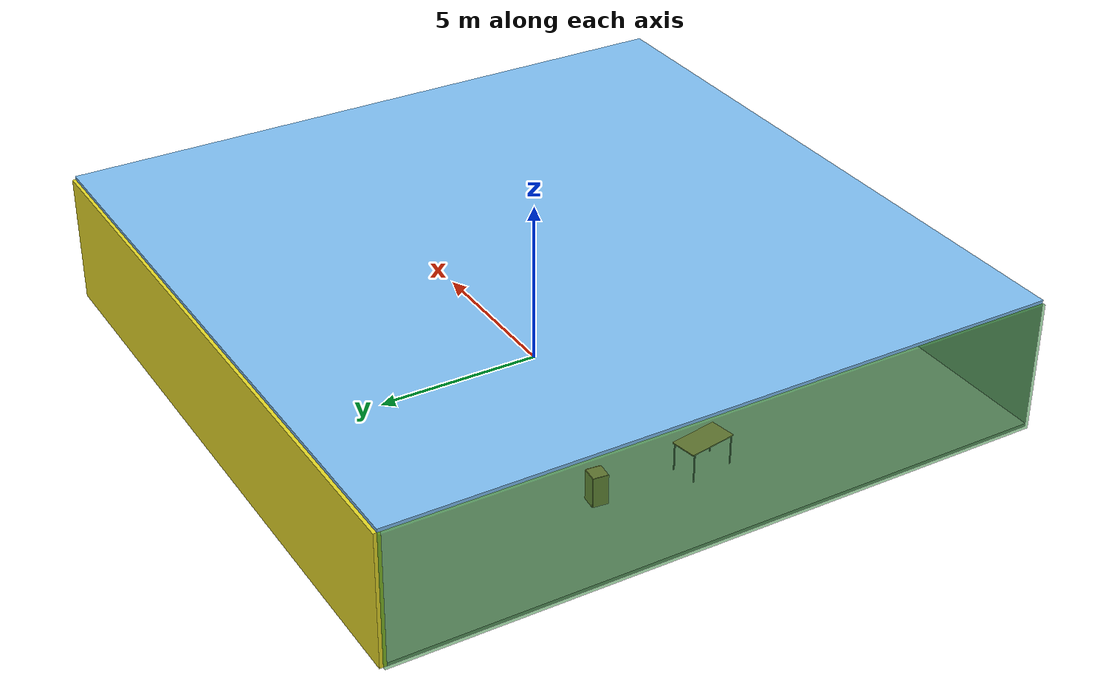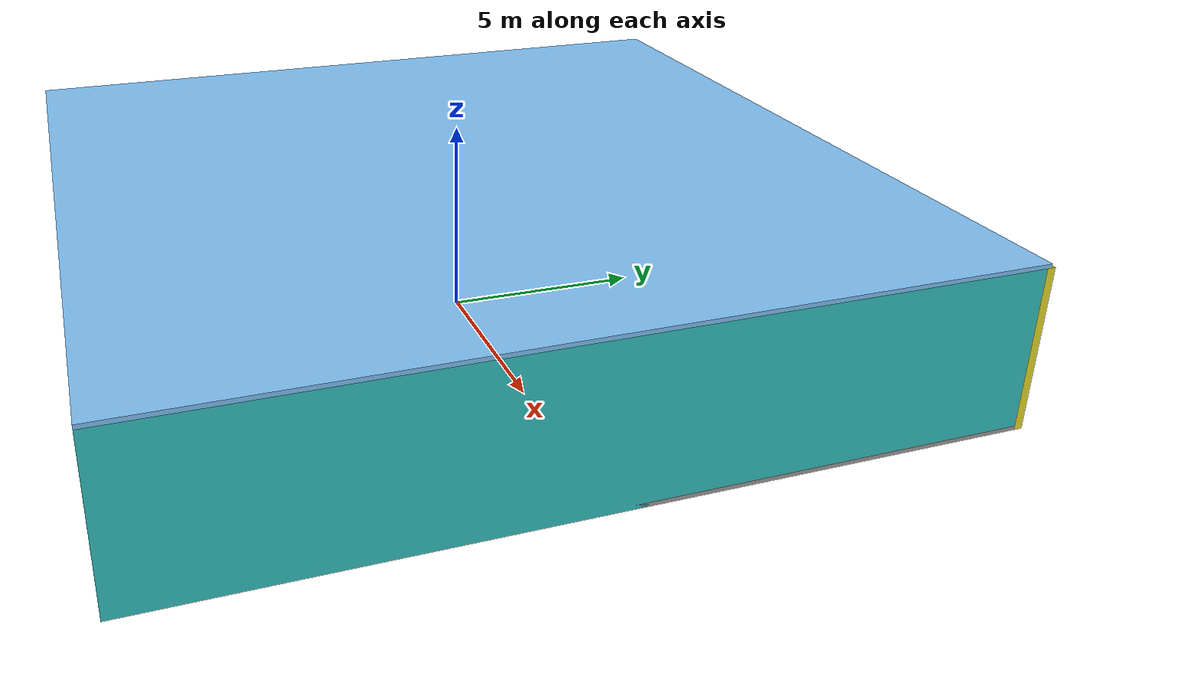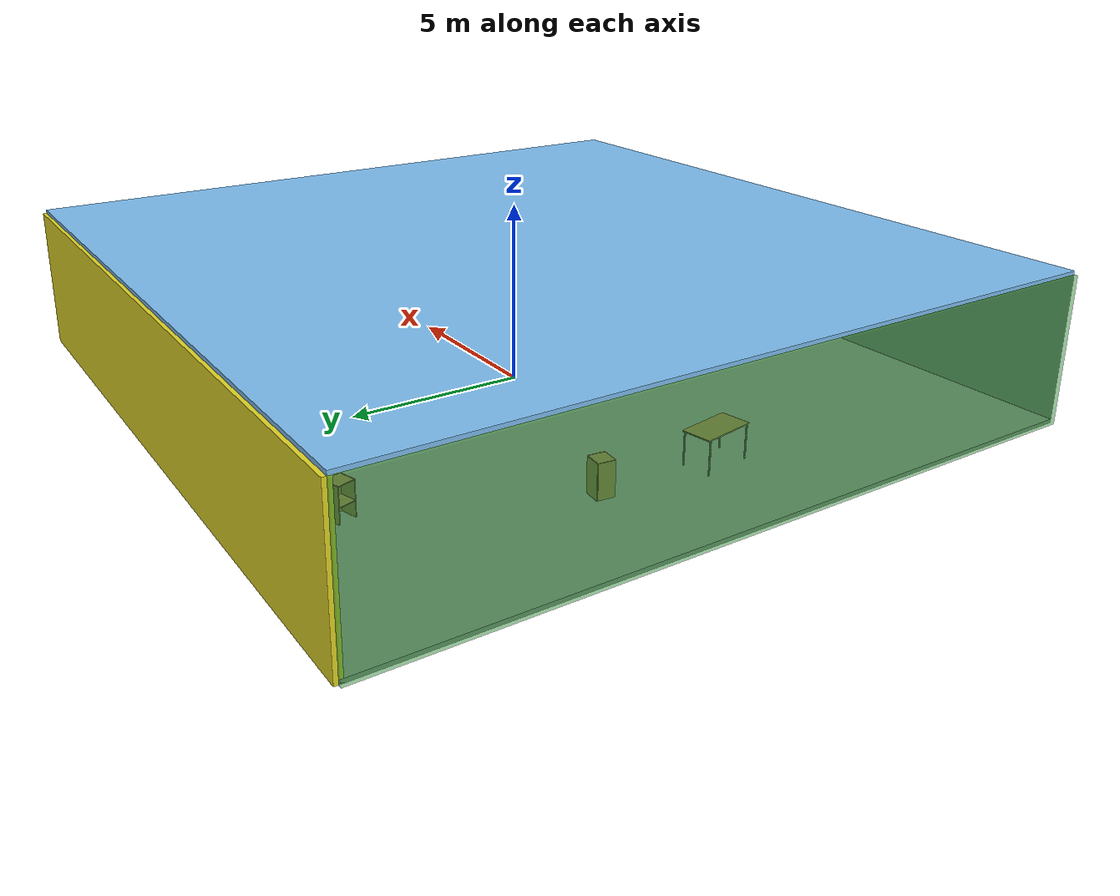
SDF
<sdf version="1.4">
 <world name="default">
  <physics type="ode">
   <max_step_size>0.001</max_step_size>
   <real_time_factor>1</real_time_factor>
   <real_time_update_rate>1000</real_time_update_rate>
   <gravity>0 0 -9.8</gravity>
  </physics>
  <scene><ambient>0.4 0.4 0.4 1</ambient><background>0.7 0.7 0.7 1</background><shadows>1</shadows></scene>
  <model name="Surrounding">
   <static>1</static>
   <link name="Ceiling">
    <collision name="Ceiling_Collision"><geometry><box><size>20 20 0.1</size></box></geometry></collision>
    <visual name="Ceiling_Visual">
     <geometry><box><size>20 20 0.1</size></box></geometry>
     <material>
      <script><uri>file://media/materials/scripts/gazebo.material</uri><name>Gazebo/SkyBlue</name></script>
     </material>
    </visual>
    <pose>0 0 4.05 0 0 0</pose>
   </link>
   <link name="Wall_South">
    <collision name="Wall_South_Collision">
     <geometry><box><size>20 0 4</size></box></geometry>
     <pose>0 0 2 0 -0 0</pose>
    </collision>
    <visual name="Wall_South_Visual">
     <pose>0 0 2 0 -0 0</pose>
     <geometry><box><size>20 0 4</size></box></geometry>
     <material>
      <script><uri>file://media/materials/scripts/gazebo.material</uri><name>Gazebo/GreyGradientSky</name></script>
     </material>
    </visual>
    <velocity_decay><linear>0</linear><angular>0</angular></velocity_decay>
    <pose>0 -10 0 0 -0 0</pose>
   </link>
   <link name="Wall_East">
    <collision name="Wall_21_Collision">
     <geometry><box><size>20 0 4</size></box></geometry>
     <pose>0 0 2 0 -0 0</pose>
    </collision>
    <visual name="Wall_21_Visual">
     <pose>0 0 2 0 -0 0</pose>
     <geometry><box><size>20 0 4</size></box></geometry>
     <material>
      <script>
       <uri>file://media/materials/scripts/gazebo.material</uri>
       <name>Gazebo/TurquoiseGlowOutline</name>
      </script>
     </material>
    </visual>
    <velocity_decay><linear>0</linear><angular>0</angular></velocity_decay>
    <pose>10 0 0 0 -0 1.5708</pose>
   </link>
   <link name="Wall_North">
    <collision name="Wall_22_Collision">
     <geometry><box><size>20 0.2 4</size></box></geometry>
     <pose>0 0 2 0 -0 0</pose>
    </collision>
    <visual name="Wall_22_Visual">
     <pose>0 0 2 0 -0 0</pose>
     <geometry><box><size>20 0.2 4</size></box></geometry>
     <material>
      <script><uri>file://media/materials/scripts/gazebo.material</uri><name>Gazebo/Yellow</name></script>
     </material>
    </visual>
    <velocity_decay><linear>0</linear><angular>0</angular></velocity_decay>
    <pose>0 10 0 0 -0 0</pose>
   </link>
   <link name="Wall_West">
    <collision name="Wall_23_Collision">
     <geometry><box><size>20 0.2 4</size></box></geometry>
     <pose>0 0 2 0 -0 0</pose>
    </collision>
    <visual name="Wall_23_Visual">
     <pose>0 0 2 0 -0 0</pose>
     <geometry><box><size>20 0.2 4</size></box></geometry>
     <material>
      <script><uri>file://media/materials/scripts/gazebo.material</uri><name>Gazebo/GreenTransparent</name></script>
     </material>
    </visual>
    <velocity_decay><linear>0</linear><angular>0</angular></velocity_decay>
    <pose>-10 0 0 0 0 -1.5708</pose>
   </link>
   <link name="Ground_link">
    <collision name="collision">
     <pose>0 0 .05 0 -0 0</pose>
     <geometry><box><size>20 20 0.1</size></box></geometry>
    </collision>
    <visual name="visual">
     <pose>0 0 .05 0 -0 0</pose>
     <geometry><box><size>20 20 0.1</size></box></geometry>
     <material>
      <script><uri>file://media/materials/scripts/gazebo.material</uri><name>Gazebo/Grey</name></script>
     </material>
    </visual>
   </link>
   <static>1</static>
  </model>
  <spherical_coordinates>
   <surface_model>EARTH_WGS84</surface_model>
   <latitude_deg>0</latitude_deg>
   <longitude_deg>0</longitude_deg>
   <elevation>0</elevation>
   <heading_deg>0</heading_deg>
  </spherical_coordinates>
  <light name="lightball_0" type="diffuse">
   <diffuse>0.8 0.8 0.8 1</diffuse>
   <specular>0.2 0.2 0.2 1</specular>
   <attenuation>
    <range>100</range>
    <constant>0.7</constant>
    <linear>0.01</linear>
    <quadratic>0.001</quadratic>
   </attenuation>
   <direction>-0.5 0.1 -0.9</direction>
   <pose>6.57377205064 -0.527675297159 3.57448201115 0 0 0</pose>
  </light>
  <light name="lightball_1" type="diffuse">
   <diffuse>0.8 0.8 0.8 1</diffuse>
   <specular>0.2 0.2 0.2 1</specular>
   <attenuation>
    <range>100</range>
    <constant>0.7</constant>
    <linear>0.01</linear>
    <quadratic>0.001</quadratic>
   </attenuation>
   <direction>-0.5 0.1 -0.9</direction>
   <pose>9.71464029626 8.99248074421 1.67607017532 0 0 0</pose>
  </light>
  <light name="lightball_2" type="diffuse">
   <diffuse>0.8 0.8 0.8 1</diffuse>
   <specular>0.2 0.2 0.2 1</specular>
   <attenuation>
    <range>100</range>
    <constant>0.7</constant>
    <linear>0.01</linear>
    <quadratic>0.001</quadratic>
   </attenuation>
   <direction>-0.5 0.1 -0.9</direction>
   <pose>-8.48938193504 -7.26790494948 0.54999108099 0 0 0</pose>
  </light>
  <light name="lightball_3" type="diffuse">
   <diffuse>0.8 0.8 0.8 1</diffuse>
   <specular>0.2 0.2 0.2 1</specular>
   <attenuation>
    <range>100</range>
    <constant>0.7</constant>
    <linear>0.01</linear>
    <quadratic>0.001</quadratic>
   </attenuation>
   <direction>-0.5 0.1 -0.9</direction>
   <pose>-6.33713496076 1.91790238387 1.89926182114 0 0 0</pose>
  </light>
  <light name="lightball_4" type="diffuse">
   <diffuse>0.8 0.8 0.8 1</diffuse>
   <specular>0.2 0.2 0.2 1</specular>
   <attenuation>
    <range>100</range>
    <constant>0.7</constant>
    <linear>0.01</linear>
    <quadratic>0.001</quadratic>
   </attenuation>
   <direction>-0.5 0.1 -0.9</direction>
   <pose>-4.71267462996 2.30192686733 1.50134138681 0 0 0</pose>
  </light>
  <light name="lightball_5" type="diffuse">
   <diffuse>0.8 0.8 0.8 1</diffuse>
   <specular>0.2 0.2 0.2 1</specular>
   <attenuation>
    <range>100</range>
    <constant>0.7</constant>
    <linear>0.01</linear>
    <quadratic>0.001</quadratic>
   </attenuation>
   <direction>-0.5 0.1 -0.9</direction>
   <pose>6.2723905406 6.99768398831 2.80316321359 0 0 0</pose>
  </light>
  <light name="lightball_6" type="diffuse">
   <diffuse>0.8 0.8 0.8 1</diffuse>
   <specular>0.2 0.2 0.2 1</specular>
   <attenuation>
    <range>100</range>
    <constant>0.7</constant>
    <linear>0.01</linear>
    <quadratic>0.001</quadratic>
   </attenuation>
   <direction>-0.5 0.1 -0.9</direction>
   <pose>-7.5735988195 -9.73686104195 0.589410749926 0 0 0</pose>
  </light>
  <light name="lightball_7" type="diffuse">
   <diffuse>0.8 0.8 0.8 1</diffuse>
   <specular>0.2 0.2 0.2 1</specular>
   <attenuation>
    <range>100</range>
    <constant>0.7</constant>
    <linear>0.01</linear>
    <quadratic>0.001</quadratic>
   </attenuation>
   <direction>-0.5 0.1 -0.9</direction>
   <pose>6.98053367857 7.39031814203 2.12611074152 0 0 0</pose>
  </light>
  <light name="lightball_8" type="diffuse">
   <diffuse>0.8 0.8 0.8 1</diffuse>
   <specular>0.2 0.2 0.2 1</specular>
   <attenuation>
    <range>100</range>
    <constant>0.7</constant>
    <linear>0.01</linear>
    <quadratic>0.001</quadratic>
   </attenuation>
   <direction>-0.5 0.1 -0.9</direction>
   <pose>-6.79344683276 7.35025119316 3.73650847178 0 0 0</pose>
  </light>
  <light name="lightball_9" type="diffuse">
   <diffuse>0.8 0.8 0.8 1</diffuse>
   <specular>0.2 0.2 0.2 1</specular>
   <attenuation>
    <range>100</range>
    <constant>0.7</constant>
    <linear>0.01</linear>
    <quadratic>0.001</quadratic>
   </attenuation>
   <direction>-0.5 0.1 -0.9</direction>
   <pose>-2.35298711018 -8.25101670371 0.772638506449 0 0 0</pose>
  </light>
  <light name="lightball_10" type="diffuse">
   <diffuse>0.8 0.8 0.8 1</diffuse>
   <specular>0.2 0.2 0.2 1</specular>
   <attenuation>
    <range>100</range>
    <constant>0.7</constant>
    <linear>0.01</linear>
    <quadratic>0.001</quadratic>
   </attenuation>
   <direction>-0.5 0.1 -0.9</direction>
   <pose>5.37442402715 -7.309346155 2.29082429617 0 0 0</pose>
  </light>
  <light name="lightball_11" type="diffuse">
   <diffuse>0.8 0.8 0.8 1</diffuse>
   <specular>0.2 0.2 0.2 1</specular>
   <attenuation>
    <range>100</range>
    <constant>0.7</constant>
    <linear>0.01</linear>
    <quadratic>0.001</quadratic>
   </attenuation>
   <direction>-0.5 0.1 -0.9</direction>
   <pose>-9.35856857716 0.305506434053 3.01065994982 0 0 0</pose>
  </light>
  <light name="lightball_12" type="diffuse">
   <diffuse>0.8 0.8 0.8 1</diffuse>
   <specular>0.2 0.2 0.2 1</specular>
   <attenuation>
    <range>100</range>
    <constant>0.7</constant>
    <linear>0.01</linear>
    <quadratic>0.001</quadratic>
   </attenuation>
   <direction>-0.5 0.1 -0.9</direction>
   <pose>6.78772659269 -8.7136823868 2.93802189634 0 0 0</pose>
  </light>
  <light name="lightball_13" type="diffuse">
   <diffuse>0.8 0.8 0.8 1</diffuse>
   <specular>0.2 0.2 0.2 1</specular>
   <attenuation>
    <range>100</range>
    <constant>0.7</constant>
    <linear>0.01</linear>
    <quadratic>0.001</quadratic>
   </attenuation>
   <direction>-0.5 0.1 -0.9</direction>
   <pose>-4.80501466035 -2.36298404555 2.37338105791 0 0 0</pose>
  </light>
  <include><uri>model://table</uri><pose>-7.15435085564 -1.05993697165 0 0 0 1.74528477881</pose></include>
  <include><uri>model://cabinet</uri><pose>-7.03299025711 2.20474384498 0 0 0 1.46375909147</pose></include>
  <include><uri>model://cabinet</uri><pose>-4.85659004703 7.57244394682 0 0 0 0.295665789312</pose></include>
  <include><uri>model://table</uri><pose>1.57474560448 6.78564621863 0 0 0 0.55350137044</pose></include>
  <include>
   <uri>model://robocup_3Dsim_goal</uri>
   <pose>7.53643968307 1.86729918294 0 0 0 1.58314193723</pose>
  </include>
  <include>
   <uri>model://construction_cone</uri>
   <pose>7.73259198313 7.73324807693 0 0 0 2.48203657678</pose>
  </include>
 </world>
</sdf>

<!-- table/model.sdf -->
<sdf version="1.5">
  <model name="table">
    <static>true</static>
    <link name="link">
      <collision name="surface">
        <pose>0 0 1.0 0 0 0</pose>
        <geometry>
          <box>
            <size>1.5 0.8 0.03</size>
          </box>
        </geometry>
        <surface>
          <friction>
            <ode>
              <mu>0.6</mu>
              <mu2>0.6</mu2>
            </ode>
          </friction>
        </surface>
      </collision>
      <visual name="visual1">
        <pose>0 0 1.0 0 0 0</pose>
        <geometry>
          <box>
            <size>1.5 0.8 0.03</size>
          </box>
        </geometry>
        <material>
          <script>
            <uri>model://media/materials/scripts/gazebo.material</uri>
            <name>Gazebo/Wood</name>
          </script>
        </material>
      </visual>
      <collision name="front_left_leg">
        <pose>0.68 0.38 0.5 0 0 0</pose>
        <geometry>
          <cylinder>
            <radius>0.02</radius>
            <length>1.0</length>
          </cylinder>
        </geometry>
      </collision>
      <visual name="front_left_leg">
        <pose>0.68 0.38 0.5 0 0 0</pose>
        <geometry>
          <cylinder>
            <radius>0.02</radius>
            <length>1.0</length>
          </cylinder>
        </geometry>
        <material>
          <script>
            <uri>model://media/materials/scripts/gazebo.material</uri>
            <name>Gazebo/Grey</name>
          </script>
        </material>
      </visual>
      <collision name="front_right_leg">
        <pose>0.68 -0.38 0.5 0 0 0</pose>
        <geometry>
          <cylinder>
            <radius>0.02</radius>
            <length>1.0</length>
          </cylinder>
        </geometry>
      </collision>
      <visual name="front_right_leg">
        <pose>0.68 -0.38 0.5 0 0 0</pose>
        <geometry>
          <cylinder>
            <radius>0.02</radius>
            <length>1.0</length>
          </cylinder>
        </geometry>
        <material>
          <script>
            <uri>model://media/materials/scripts/gazebo.material</uri>
            <name>Gazebo/Grey</name>
          </script>
        </material>
      </visual>
      <collision name="back_right_leg">
        <pose>-0.68 -0.38 0.5 0 0 0</pose>
        <geometry>
          <cylinder>
            <radius>0.02</radius>
            <length>1.0</length>
          </cylinder>
        </geometry>
      </collision>
      <visual name="back_right_leg">
        <pose>-0.68 -0.38 0.5 0 0 0</pose>
        <geometry>
          <cylinder>
            <radius>0.02</radius>
            <length>1.0</length>
          </cylinder>
        </geometry>
        <material>
          <script>
            <uri>model://media/materials/scripts/gazebo.material</uri>
            <name>Gazebo/Grey</name>
          </script>
        </material>
      </visual>
      <collision name="back_left_leg">
        <pose>-0.68 0.38 0.5 0 0 0</pose>
        <geometry>
          <cylinder>
            <radius>0.02</radius>
            <length>1.0</length>
          </cylinder>
        </geometry>
      </collision>
      <visual name="back_left_leg">
        <pose>-0.68 0.38 0.5 0 0 0</pose>
        <geometry>
          <cylinder>
            <radius>0.02</radius>
            <length>1.0</length>
          </cylinder>
        </geometry>
        <material>
          <script>
            <uri>model://media/materials/scripts/gazebo.material</uri>
            <name>Gazebo/Grey</name>
          </script>
        </material>
      </visual>
    </link>
  </model>
</sdf>

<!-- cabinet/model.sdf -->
<sdf version="1.5">
  <model name="cabinet">
    <static>true</static>
    <link name="cabinet_bottom_plate">
      <inertial>
        <pose>0 0 -1 0 0 0</pose>
        <inertia>
          <ixx>2.050000</ixx>
          <ixy>0</ixy>
          <ixz>0</ixz>
          <iyy>2.050000</iyy>
          <iyz>0</iyz>
          <izz>2.050000</izz>
        </inertia>
        <mass>25.000000</mass>
      </inertial>
      <collision name="cabinet_bottom_plate_geom">
        <pose>0 0 0.010000 0 0 0</pose>
        <geometry>
          <box>
            <size>0.450000 0.450000 0.020000</size>
          </box>
        </geometry>
      </collision>
      <visual name="cabinet_bottom_plate_geom_visual">
        <pose>0 0 0.010000 0 0 0</pose>
        <geometry>
          <box>
            <size>0.450000 0.450000 0.020000</size>
          </box>
        </geometry>
        <material>
          <script>
            <uri>model://media/materials/scripts/gazebo.material</uri>
            <name>Gazebo/Wood</name>
          </script>
        </material>
      </visual>
      <collision name="cabinet_bottom_plate_geom_cabinet_back_plate">
        <pose>0.235000 0 0.510000 0 0 0</pose>
        <geometry>
          <box>
            <size>0.020000 0.450000 1.020000</size>
          </box>
        </geometry>
      </collision>
      <visual name="cabinet_bottom_plate_geom_cabinet_back_plate_visual">
        <pose>0.235000 0 0.510000 0 0 0</pose>
        <geometry>
          <box>
            <size>0.020000 0.450000 1.020000</size>
          </box>
        </geometry>
        <material>
          <script>
            <uri>model://media/materials/scripts/gazebo.material</uri>
            <name>Gazebo/Wood</name>
          </script>
        </material>
      </visual>
      <collision name="cabinet_bottom_plate_geom_cabinet_left_plate">
        <pose>0 0.235000 0.510000 0 0 0</pose>
        <geometry>
          <box>
            <size>0.450000 0.020000 1.020000</size>
          </box>
        </geometry>
      </collision>
      <visual name="cabinet_bottom_plate_geom_cabinet_left_plate_visual">
        <pose>0 0.235000 0.510000 0 0 0</pose>
        <geometry>
          <box>
            <size>0.450000 0.020000 1.020000</size>
          </box>
        </geometry>
        <material>
          <script>
            <uri>model://media/materials/scripts/gazebo.material</uri>
            <name>Gazebo/Wood</name>
          </script>
        </material>
      </visual>
      <collision name="cabinet_bottom_plate_geom_cabinet_middle_plate">
        <pose>0 0 0.510000 0 0 0</pose>
        <geometry>
          <box>
            <size>0.450000 0.450000 0.020000</size>
          </box>
        </geometry>
      </collision>
      <visual name="cabinet_bottom_plate_geom_cabinet_middle_plate_visual">
        <pose>0 0 0.510000 0 0 0</pose>
        <geometry>
          <box>
            <size>0.450000 0.450000 0.020000</size>
          </box>
        </geometry>
        <material>
          <script>
            <uri>model://media/materials/scripts/gazebo.material</uri>
            <name>Gazebo/Wood</name>
          </script>
        </material>
      </visual>
      <collision name="cabinet_bottom_plate_geom_cabinet_right_plate">
        <pose>0 -0.235000 0.510000 0 0 0</pose>
        <geometry>
          <box>
            <size>0.450000 0.020000 1.020000</size>
          </box>
        </geometry>
      </collision>
      <visual name="cabinet_bottom_plate_geom_cabinet_right_plate_visual">
        <pose>0 -0.235000 0.510000 0 0 0</pose>
        <geometry>
          <box>
            <size>0.450000 0.020000 1.020000</size>
          </box>
        </geometry>
        <material>
          <script>
            <uri>model://media/materials/scripts/gazebo.material</uri>
            <name>Gazebo/Wood</name>
          </script>
        </material>
      </visual>
      <collision name="cabinet_bottom_plate_geom_cabinet_top_plate">
        <pose>0 0 1.010000 0 0 0</pose>
        <geometry>
          <box>
            <size>0.450000 0.450000 0.020000</size>
          </box>
        </geometry>
      </collision>
      <visual name="cabinet_bottom_plate_geom_cabinet_top_plate_visual">
        <pose>0 0 1.010000 0 0 0</pose>
        <geometry>
          <box>
            <size>0.450000 0.450000 0.020000</size>
          </box>
        </geometry>
        <material>
          <script>
            <uri>model://media/materials/scripts/gazebo.material</uri>
            <name>Gazebo/Wood</name>
          </script>
        </material>
      </visual>
    </link>
  </model>
</sdf>

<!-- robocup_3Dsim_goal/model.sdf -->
<sdf version="1.5">
  <model name="robocup_3d_goal">
    <static>true</static>
    <link name="left_post">
      <pose>0 1.05 0.45 0 0 0</pose>
      <collision name="collision">
        <geometry>
          <cylinder>
            <radius>0.05</radius>
            <length>0.9</length>
          </cylinder>
        </geometry>
      </collision>
      <visual name="visual">
        <geometry>
          <cylinder>
            <radius>0.05</radius>
            <length>0.9</length>
          </cylinder>
        </geometry>
        <material>
          <script>
            <uri>file://media/materials/scripts/gazebo.material</uri>
            <name>Gazebo/ZincYellow</name>
          </script>
        </material>
      </visual>
    </link>
    <link name="left_support_horiz_lower">
      <pose>0.30 1.05 0.01 0 0 0</pose>
      <collision name="collision">
        <geometry>
          <box>
            <size>0.50 0.02 0.02</size>
          </box>
        </geometry>
      </collision>
      <visual name="visual">
        <geometry>
          <box>
            <size>0.50 0.02 0.02</size>
          </box>
        </geometry>
        <material>
          <script>
            <uri>file://media/materials/scripts/gazebo.material</uri>
            <name>Gazebo/White</name>
          </script>
        </material>
      </visual>
    </link>
    <link name="left_support_horiz_upper">
      <pose>0.30 1.05 0.79 0 0 0</pose>
      <collision name="collision">
        <geometry>
          <box>
            <size>0.50 0.02 0.02</size>
          </box>
        </geometry>
      </collision>
      <visual name="visual">
        <geometry>
          <box>
            <size>0.50 0.02 0.02</size>
          </box>
        </geometry>
        <material>
          <script>
            <uri>file://media/materials/scripts/gazebo.material</uri>
            <name>Gazebo/White</name>
          </script>
        </material>
      </visual>
    </link>
    <link name="left_support_vertical">
      <pose>0.56 1.05 0.4 0 1.5708 0</pose>
      <collision name="collision">
        <geometry>
          <box>
            <size>0.80 0.02 0.02</size>
          </box>
        </geometry>
      </collision>
      <visual name="visual">
        <geometry>
          <box>
            <size>0.80 0.02 0.02</size>
          </box>
        </geometry>
        <material>
          <script>
            <uri>file://media/materials/scripts/gazebo.material</uri>
            <name>Gazebo/White</name>
          </script>
        </material>
      </visual>
    </link>
    <link name="right_support_horiz_lower">
      <pose>0.30 -1.05 0.01 0 0 0</pose>
      <collision name="collision">
        <geometry>
          <box>
            <size>0.50 0.02 0.02</size>
          </box>
        </geometry>
      </collision>
      <visual name="visual">
        <geometry>
          <box>
            <size>0.50 0.02 0.02</size>
          </box>
        </geometry>
        <material>
          <script>
            <uri>file://media/materials/scripts/gazebo.material</uri>
            <name>Gazebo/White</name>
          </script>
        </material>
      </visual>
    </link>
    <link name="right_support_horiz_upper">
      <pose>0.30 -1.05 0.79 0 0 0</pose>
      <collision name="collision">
        <geometry>
          <box>
            <size>0.50 0.02 0.02</size>
          </box>
        </geometry>
      </collision>
      <visual name="visual">
        <geometry>
          <box>
            <size>0.50 0.02 0.02</size>
          </box>
        </geometry>
        <material>
          <script>
            <uri>file://media/materials/scripts/gazebo.material</uri>
            <name>Gazebo/White</name>
          </script>
        </material>
      </visual>
    </link>
    <link name="right_support_vertical">
      <pose>0.56 -1.05 0.4 0 1.5708 0</pose>
      <collision name="collision">
        <geometry>
          <box>
            <size>0.80 0.02 0.02</size>
          </box>
        </geometry>
      </collision>
      <visual name="visual">
        <geometry>
          <box>
            <size>0.80 0.02 0.02</size>
          </box>
        </geometry>
        <material>
          <script>
            <uri>file://media/materials/scripts/gazebo.material</uri>
            <name>Gazebo/White</name>
          </script>
        </material>
      </visual>
    </link>
    <link name="center_support_horiz_lower">
      <pose>0.56 0 0.01 0 1.5708 0</pose>
      <collision name="collision">
        <geometry>
          <box>
            <size>0.02 2.08 0.02</size>
          </box>
        </geometry>
      </collision>
      <visual name="visual">
        <geometry>
          <box>
            <size>0.02 2.08 0.02</size>
          </box>
        </geometry>
        <material>
          <script>
            <uri>file://media/materials/scripts/gazebo.material</uri>
            <name>Gazebo/White</name>
          </script>
        </material>
      </visual>
    </link>
    <link name="center_support_horiz_upper">
      <pose>0.56 0 0.79 0 1.5708 0</pose>
      <collision name="collision">
        <geometry>
          <box>
            <size>0.02 2.08 0.02</size>
          </box>
        </geometry>
      </collision>
      <visual name="visual">
        <geometry>
          <box>
            <size>0.02 2.08 0.02</size>
          </box>
        </geometry>
        <material>
          <script>
            <uri>file://media/materials/scripts/gazebo.material</uri>
            <name>Gazebo/White</name>
          </script>
        </material>
      </visual>
    </link>
    <link name="right_post">
      <pose>0 -1.05 0.45 0 0 0</pose>
      <collision name="collision">
        <geometry>
          <cylinder>
            <radius>0.05</radius>
            <length>0.9</length>
          </cylinder>
        </geometry>
      </collision>
      <visual name="visual">
        <geometry>
          <cylinder>
            <radius>0.05</radius>
            <length>0.9</length>
          </cylinder>
        </geometry>
        <material>
          <script>
            <uri>file://media/materials/scripts/gazebo.material</uri>
            <name>Gazebo/ZincYellow</name>
          </script>
        </material>
      </visual>
    </link>
    <link name="crossbar">
      <pose>0 0 0.85 1.57 1.57 0</pose>
      <collision name="collision">
        <geometry>
          <cylinder>
            <radius>0.05</radius>
            <length>2.0</length>
          </cylinder>
        </geometry>
      </collision>
      <visual name="visual">
        <geometry>
          <cylinder>
            <radius>0.05</radius>
            <length>2.0</length>
          </cylinder>
        </geometry>
        <material>
          <script>
            <uri>file://media/materials/scripts/gazebo.material</uri>
            <name>Gazebo/ZincYellow</name>
          </script>
        </material>
      </visual>
    </link>
    <link name="center_net">
      <pose>0.56 0 0.40 0 0 0</pose>
      <collision name="collision">
        <geometry>
          <box>
            <size>0.01 2.1 0.80</size>
          </box>
        </geometry>
      </collision>
      <visual name="visual">
        <geometry>
          <box>
            <size>0.01 2.1 0.80</size>
          </box>
        </geometry>
        <material>
          <script>
            <uri>model://../model_source/models/robocup09_spl_field/materials/scripts/</uri>
            <uri>model://../model_source/models/robocup09_spl_field/materials/textures/</uri>
            <name>RoboCup/Net</name>
          </script>
        </material>
      </visual>
    </link>
    <link name="left_net">
      <pose>0.30 1.05 0.40 0 0 0</pose>
      <collision name="collision">
        <geometry>
          <box>
            <size>0.50 0.01 0.76</size>
          </box>
        </geometry>
      </collision>
      <visual name="visual">
        <geometry>
          <box>
            <size>0.50 0.01 0.76</size>
          </box>
        </geometry>
        <material>
          <script>
            <uri>model://../model_source/models/robocup09_spl_field/materials/scripts/</uri>
            <uri>model://../model_source/models/robocup09_spl_field/materials/textures/</uri>
            <name>RoboCup/Net</name>
          </script>
        </material>
      </visual>
    </link>
    <link name="right_net">
      <pose>0.30 -1.05 0.40 0 0 0</pose>
      <collision name="collision">
        <geometry>
          <box>
            <size>0.50 0.01 0.76</size>
          </box>
        </geometry>
      </collision>
      <visual name="visual">
        <geometry>
          <box>
            <size>0.50 0.01 0.76</size>
          </box>
        </geometry>
        <material>
          <script>
            <uri>model://../model_source/models/robocup09_spl_field/materials/scripts/</uri>
            <uri>model://../model_source/models/robocup09_spl_field/materials/textures/</uri>
            <name>RoboCup/Net</name>
          </script>
        </material>
      </visual>
    </link>
  </model>
</sdf>

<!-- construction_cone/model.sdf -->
<sdf version="1.5">
  <model name="Construction Cone">
    <link name="link">
      <collision name="collision">
        <geometry>
          <mesh>
            <scale>10 10 10</scale>
            <uri>file://isr-testbed/construction_cone/meshes/construction_cone.dae</uri>
          </mesh>
        </geometry>
      </collision>
      <visual name="visual">
        <geometry>
          <mesh>
            <scale>10 10 10</scale>
            <uri>file://isr-testbed/construction_cone/meshes/construction_cone.dae</uri>
          </mesh>
        </geometry>
      </visual>
    </link>
  </model>
</sdf>
